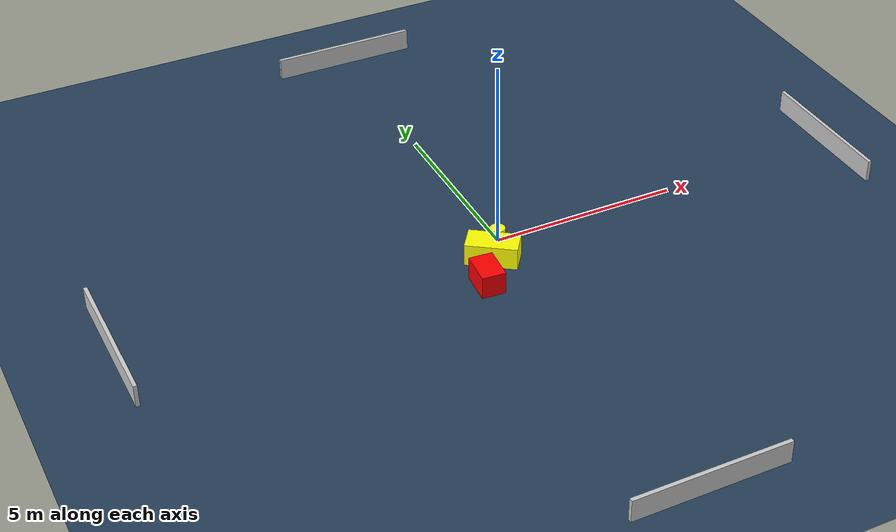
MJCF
<?xml version="1.0" ?>
<mujoco model="generated_environment">
  <option timestep="0.01" integrator="RK4" cone="elliptic"/>
  <default>
    <geom density="1"/>
  </default>
  <asset>
    <texture builtin="gradient" height="3072" name="skybox" rgb1="0.3 0.5 0.7" rgb2="0 0 0" type="skybox" width="512"/>
    <texture builtin="checker" height="300" name="groundplane" rgb1="0.2 0.3 0.4" rgb2="0.1 0.2 0.3" type="2d" width="300"/>
    <material name="groundplane" reflectance="0.2" texrepeat="5 5" texture="groundplane"/>
  </asset>
  <worldbody>
    <light dir="0 0 -1" directional="true" pos="0 0 1.5"/>
    <geom condim="3" friction="0.5 0.005 0.001" material="groundplane" name="floor" pos="0 0 0" size="0 0 0.05" type="plane"/>
    <body name="walls">
      <geom name="wall_1" condim="4" pos="-10.0 0.0 0.3" rgba="0.800000011920929 0.800000011920929 0.800000011920929 1.0" size="0.05 2.0 0.3" type="box"/>
      <geom name="wall_2" condim="4" pos="10.0 0.0 0.3" rgba="0.800000011920929 0.800000011920929 0.800000011920929 1.0" size="0.05 2.0 0.3" type="box"/>
      <geom name="wall_3" condim="4" pos="0.0 -10.0 0.3" rgba="0.800000011920929 0.800000011920929 0.800000011920929 1.0" size="2.0 0.05 0.3" type="box"/>
      <geom name="wall_4" condim="4" pos="0.0 10.0 0.3" rgba="0.800000011920929 0.800000011920929 0.800000011920929 1.0" size="2.0 0.05 0.3" type="box"/>
    </body>
    <body name="robot">
      <joint name="joint_x" type="slide" pos="0 0 0" axis="1 0 0"/>
      <joint name="joint_y" type="slide" pos="0 0 0" axis="0 1 0"/>
      <geom name="robot" type="cylinder" pos="0.0 0.0 0.2" size="0.2 0.2 0.0" mass="5.0" friction="1.0 0.005 0.0001" condim="4" rgba="1.0 1.0 0.0 1.0"/>
    </body>
    <body name="obstacle_1_movable">
      <geom name="obstacle_1_movable" condim="4" pos="-0.4594645745036352 -0.650621437269533 0.3" euler="0 0 324.60485413125116" friction="0.0 0.005 0.001" rgba="1.0 1.0 0.0 1.0" size="0.6681434770722783 0.34519306401841554 0.3" type="box" mass="0.1"/>
      <joint type="free"/>
    </body>
    <body name="obstacle_2_static">
      <geom name="obstacle_2_static" condim="4" pos="-1.0602124215794402 -1.5364191329485584 0.3" euler="0 0 265.60776885650864" friction="0.0 0.005 0.001" rgba="1.0 0.0 0.0 1.0" size="0.453975901029551 0.3111473696248261 0.3" type="box"/>
    </body>
  </worldbody>
  <actuator>
    <motor name="actuator_x" joint="joint_x" gear="1" ctrlrange="-1 1"/>
    <motor name="actuator_y" joint="joint_y" gear="1" ctrlrange="-1 1"/>
  </actuator>
</mujoco>
